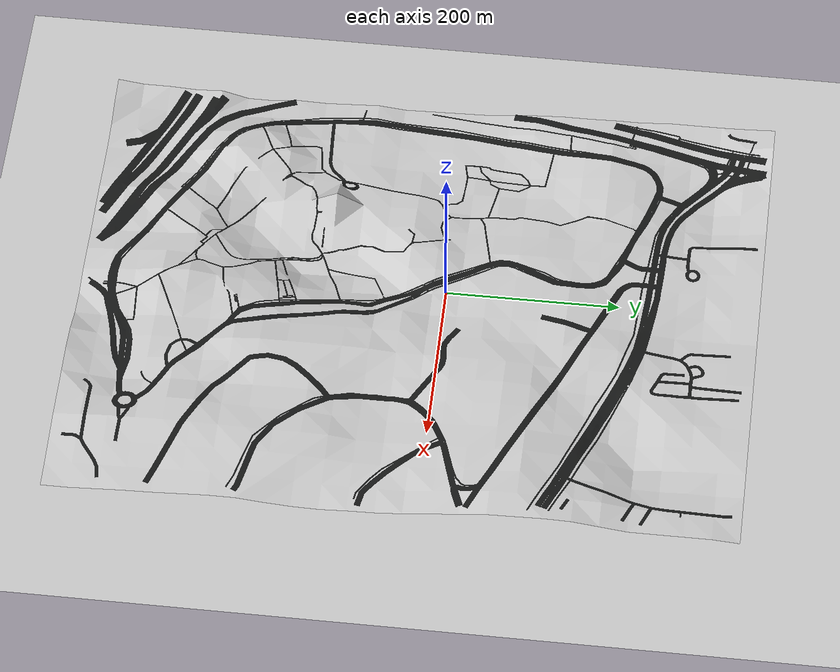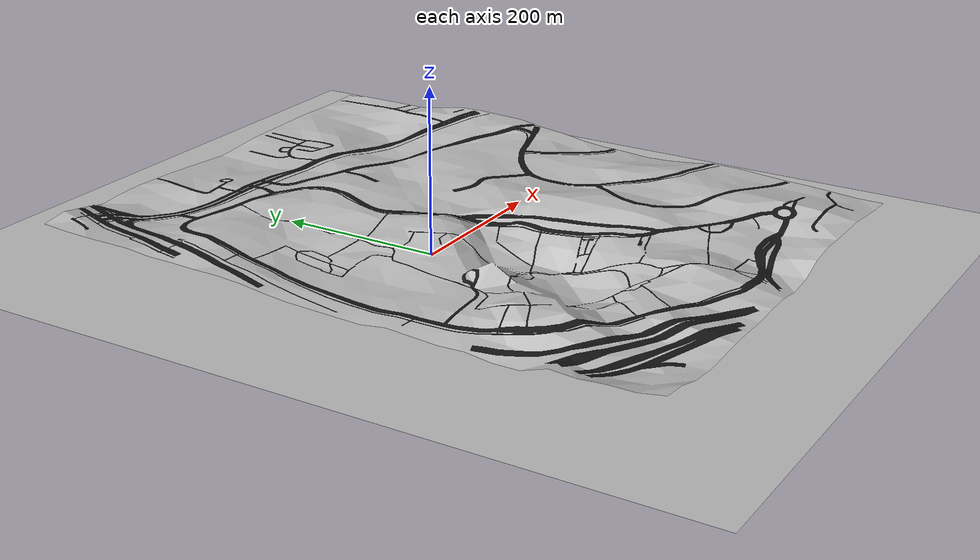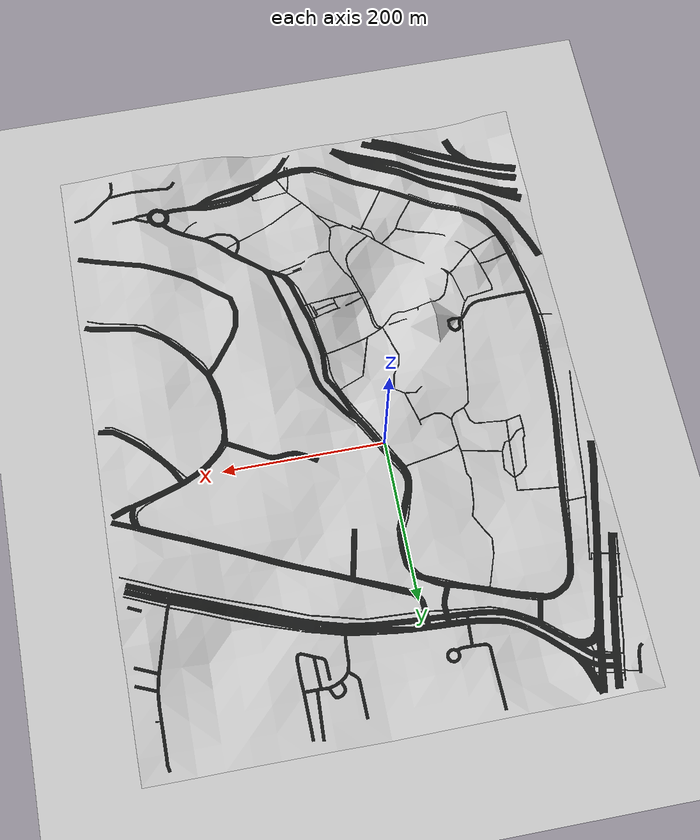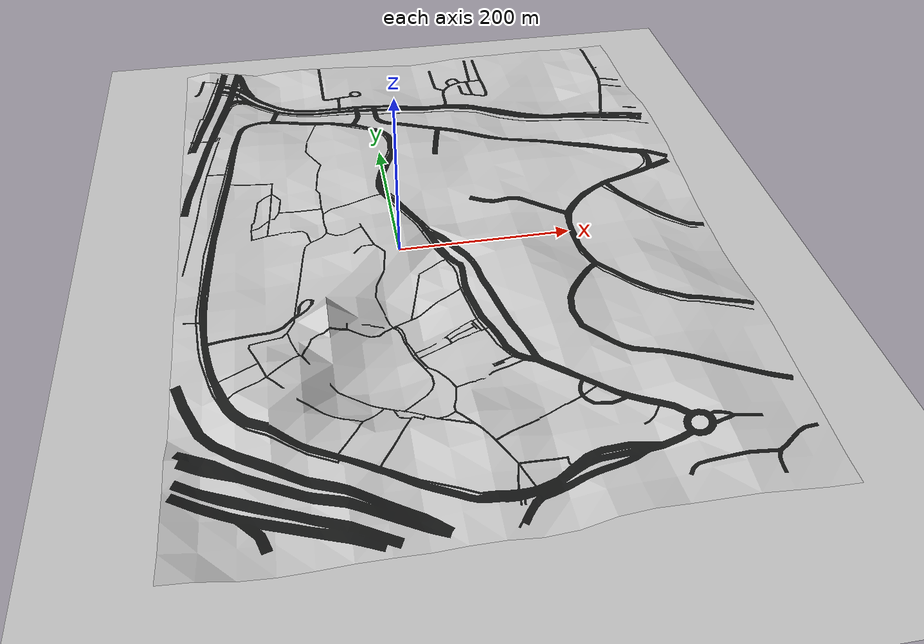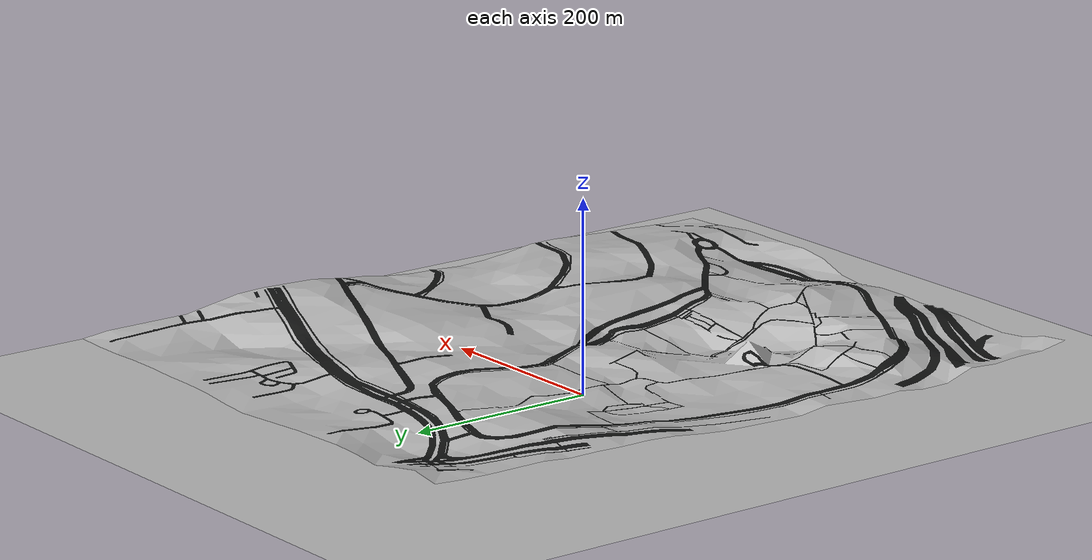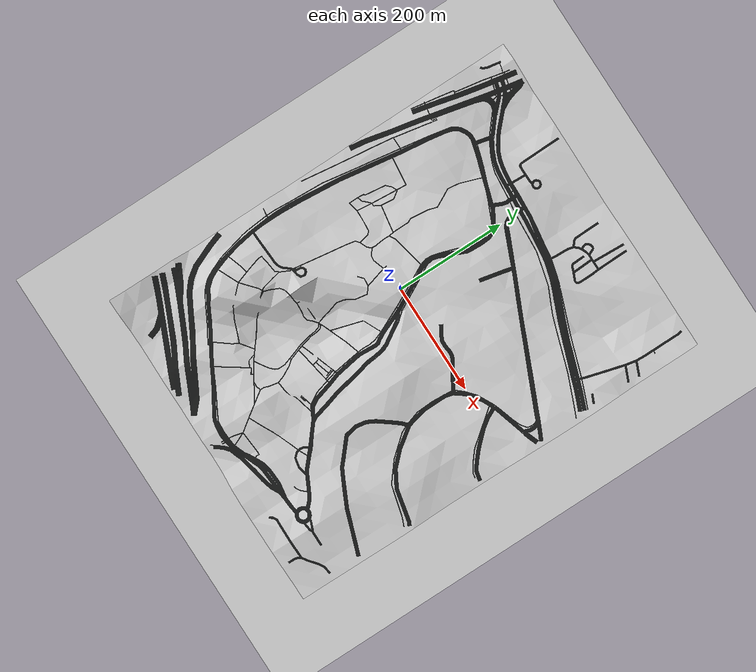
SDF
<?xml version="1.0"?>
<sdf version="1.4">
  <world name="default">
    <include>
      <uri>model://ground_plane</uri>
    </include>
    <include>
      <uri>model://sun</uri>
    </include>
    <model name="my_mesh">
      <pose>0 0 0  0 0 0</pose>
      <static>true</static>
      <link name="body">
        <visual name="visual">
          <geometry>
            <mesh><uri>file://utown_2nov.dae</uri></mesh>
          </geometry>
        </visual>
        <collision name="visual">
          <geometry>
            <mesh><uri>file://utown_2nov.dae</uri></mesh>
          </geometry>
        </collision>
      </link>
    </model>
  </world>
</sdf>
